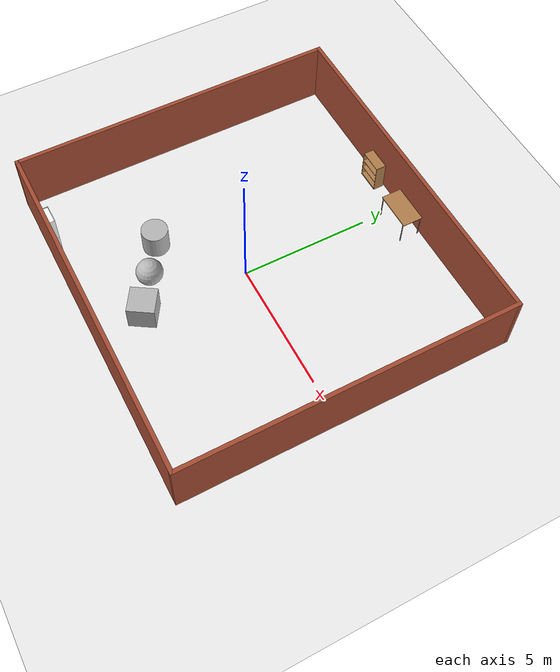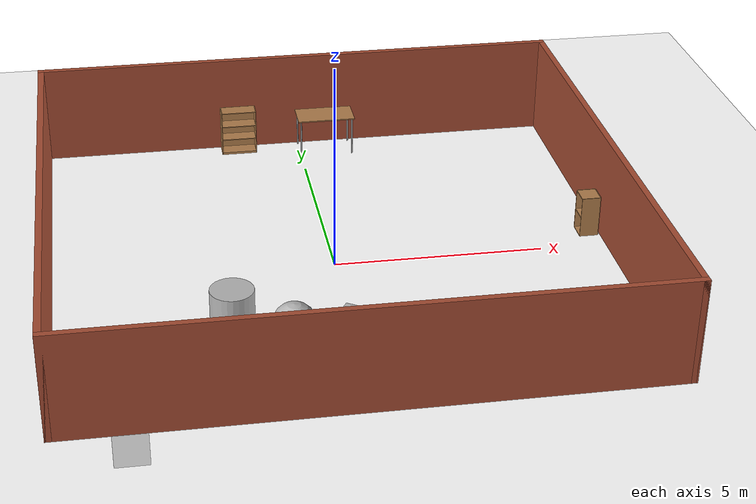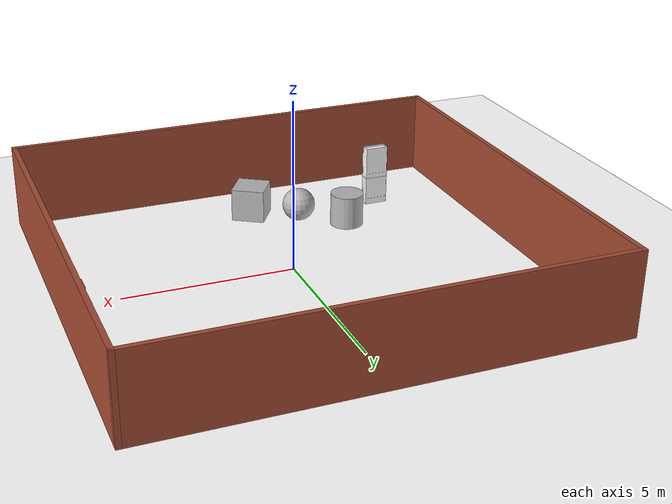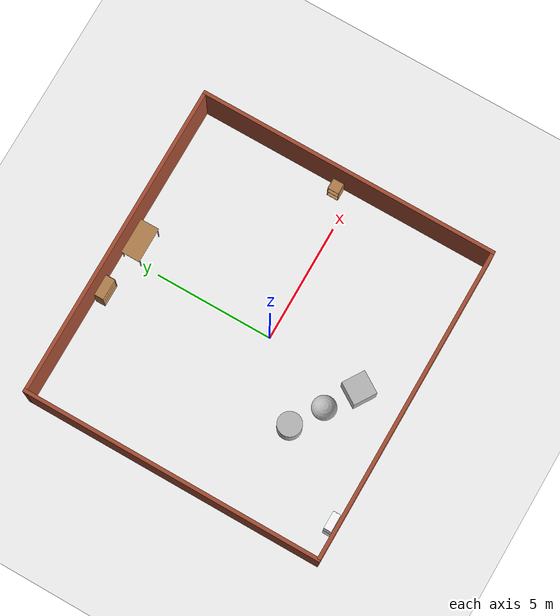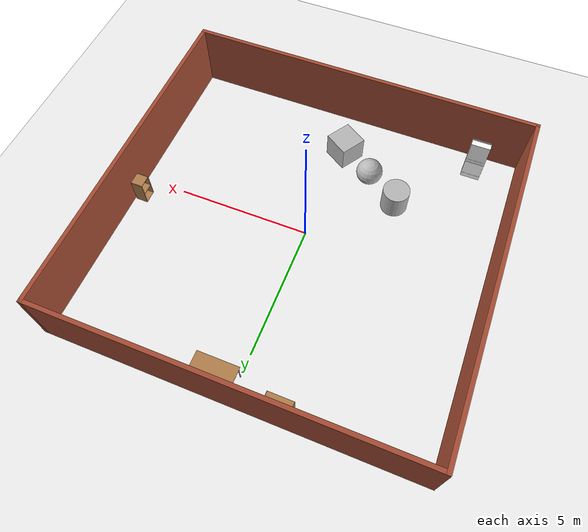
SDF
<sdf version="1.6">
 <world name="default">
  <light name="sun" type="directional">
   <pose>0 0 10 0 -0 0</pose>
   <diffuse>0.8 0.8 0.8 1</diffuse>
   <specular>0.2 0.2 0.2 1</specular>
   <attenuation>
    <range>1000</range>
    <constant>0.9</constant>
    <linear>0.01</linear>
    <quadratic>0.001</quadratic>
   </attenuation>
   <direction>-0.5 0.1 -0.9</direction>
   <spot><inner_angle>0</inner_angle><outer_angle>0</outer_angle><falloff>0</falloff></spot>
  </light>
  <model name="ground_plane">
   <static>1</static>
   <link name="link">
    <collision name="collision">
     <geometry><plane><normal>0 0 1</normal><size>100 100</size></plane></geometry>
     <surface><friction><ode><mu>100</mu><mu2>50</mu2></ode></friction></surface>
    </collision>
    <visual name="visual">
     <cast_shadows>0</cast_shadows>
     <geometry><plane><normal>0 0 1</normal><size>100 100</size></plane></geometry>
     <material>
      <script><uri>file://media/materials/scripts/gazebo.material</uri><name>Gazebo/Grey</name></script>
     </material>
    </visual>
   </link>
  </model>
  <gravity>0 0 -9.8</gravity>
  <magnetic_field>6e-06 2.3e-05 -4.2e-05</magnetic_field>
  <atmosphere type="adiabatic"/>
  <physics type="ode">
   <max_step_size>0.001</max_step_size>
   <real_time_factor>1</real_time_factor>
   <real_time_update_rate>1000</real_time_update_rate>
  </physics>
  <scene><ambient>0.4 0.4 0.4 1</ambient><background>0.7 0.7 0.7 1</background><shadows>1</shadows></scene>
  <spherical_coordinates>
   <surface_model>EARTH_WGS84</surface_model>
   <latitude_deg>0</latitude_deg>
   <longitude_deg>0</longitude_deg>
   <elevation>0</elevation>
   <heading_deg>0</heading_deg>
  </spherical_coordinates>
  <model name="Wall">
   <pose>0.003474 0.412323 0 0 -0 0</pose>
   <link name="Wall_0">
    <collision name="Wall_0_Collision">
     <geometry><box><size>12.75 0.15 2.5</size></box></geometry>
     <pose>0 0 1.25 0 -0 0</pose>
    </collision>
    <visual name="Wall_0_Visual">
     <pose>0 0 1.25 0 -0 0</pose>
     <geometry><box><size>12.75 0.15 2.5</size></box></geometry>
     <material>
      <script><uri>file://media/materials/scripts/gazebo.material</uri><name>Gazebo/Bricks</name></script>
      <ambient>1 1 1 1</ambient>
     </material>
     <meta><layer>0</layer></meta>
    </visual>
    <pose>-6.675 0 0 0 -0 -1.5708</pose>
   </link>
   <link name="Wall_1">
    <collision name="Wall_1_Collision">
     <geometry><box><size>13.5 0.15 2.5</size></box></geometry>
     <pose>0 0 1.25 0 -0 0</pose>
    </collision>
    <visual name="Wall_1_Visual">
     <pose>0 0 1.25 0 -0 0</pose>
     <geometry><box><size>13.5 0.15 2.5</size></box></geometry>
     <material>
      <script><uri>file://media/materials/scripts/gazebo.material</uri><name>Gazebo/Bricks</name></script>
      <ambient>1 1 1 1</ambient>
     </material>
     <meta><layer>0</layer></meta>
    </visual>
    <pose>0 -6.3 0 0 -0 0</pose>
   </link>
   <link name="Wall_2">
    <collision name="Wall_2_Collision">
     <geometry><box><size>12.75 0.15 2.5</size></box></geometry>
     <pose>0 0 1.25 0 -0 0</pose>
    </collision>
    <visual name="Wall_2_Visual">
     <pose>0 0 1.25 0 -0 0</pose>
     <geometry><box><size>12.75 0.15 2.5</size></box></geometry>
     <material>
      <script><uri>file://media/materials/scripts/gazebo.material</uri><name>Gazebo/Bricks</name></script>
      <ambient>1 1 1 1</ambient>
     </material>
     <meta><layer>0</layer></meta>
    </visual>
    <pose>6.675 0 0 0 -0 1.5708</pose>
   </link>
   <link name="Wall_3">
    <collision name="Wall_3_Collision">
     <geometry><box><size>13.5 0.15 2.5</size></box></geometry>
     <pose>0 0 1.25 0 -0 0</pose>
    </collision>
    <visual name="Wall_3_Visual">
     <pose>0 0 1.25 0 -0 0</pose>
     <geometry><box><size>13.5 0.15 2.5</size></box></geometry>
     <material>
      <script><uri>file://media/materials/scripts/gazebo.material</uri><name>Gazebo/Bricks</name></script>
      <ambient>1 1 1 1</ambient>
     </material>
     <meta><layer>0</layer></meta>
    </visual>
    <pose>0 6.3 0 0 -0 3.14159</pose>
   </link>
   <static>1</static>
  </model>
  <model name="table">
   <static>1</static>
   <link name="link">
    <collision name="surface">
     <pose>0 0 1 0 -0 0</pose>
     <geometry><box><size>1.5 0.8 0.03</size></box></geometry>
     <surface><friction><ode><mu>0.6</mu><mu2>0.6</mu2></ode></friction></surface>
    </collision>
    <visual name="visual1">
     <pose>0 0 1 0 -0 0</pose>
     <geometry><box><size>1.5 0.8 0.03</size></box></geometry>
     <material>
      <script><uri>file://media/materials/scripts/gazebo.material</uri><name>Gazebo/Wood</name></script>
     </material>
    </visual>
    <collision name="front_left_leg">
     <pose>0.68 0.38 0.5 0 -0 0</pose>
     <geometry><cylinder><radius>0.02</radius><length>1</length></cylinder></geometry>
    </collision>
    <visual name="front_left_leg">
     <pose>0.68 0.38 0.5 0 -0 0</pose>
     <geometry><cylinder><radius>0.02</radius><length>1</length></cylinder></geometry>
     <material>
      <script><uri>file://media/materials/scripts/gazebo.material</uri><name>Gazebo/Grey</name></script>
     </material>
    </visual>
    <collision name="front_right_leg">
     <pose>0.68 -0.38 0.5 0 -0 0</pose>
     <geometry><cylinder><radius>0.02</radius><length>1</length></cylinder></geometry>
    </collision>
    <visual name="front_right_leg">
     <pose>0.68 -0.38 0.5 0 -0 0</pose>
     <geometry><cylinder><radius>0.02</radius><length>1</length></cylinder></geometry>
     <material>
      <script><uri>file://media/materials/scripts/gazebo.material</uri><name>Gazebo/Grey</name></script>
     </material>
    </visual>
    <collision name="back_right_leg">
     <pose>-0.68 -0.38 0.5 0 -0 0</pose>
     <geometry><cylinder><radius>0.02</radius><length>1</length></cylinder></geometry>
    </collision>
    <visual name="back_right_leg">
     <pose>-0.68 -0.38 0.5 0 -0 0</pose>
     <geometry><cylinder><radius>0.02</radius><length>1</length></cylinder></geometry>
     <material>
      <script><uri>file://media/materials/scripts/gazebo.material</uri><name>Gazebo/Grey</name></script>
     </material>
    </visual>
    <collision name="back_left_leg">
     <pose>-0.68 0.38 0.5 0 -0 0</pose>
     <geometry><cylinder><radius>0.02</radius><length>1</length></cylinder></geometry>
    </collision>
    <visual name="back_left_leg">
     <pose>-0.68 0.38 0.5 0 -0 0</pose>
     <geometry><cylinder><radius>0.02</radius><length>1</length></cylinder></geometry>
     <material>
      <script><uri>file://media/materials/scripts/gazebo.material</uri><name>Gazebo/Grey</name></script>
     </material>
    </visual>
   </link>
   <pose>0.676724 6.15986 0 0 -0 0</pose>
  </model>
  <model name="bookshelf">
   <static>1</static>
   <link name="link">
    <inertial><mass>1</mass></inertial>
    <collision name="back">
     <pose>0 0.005 0.6 0 -0 0</pose>
     <geometry><box><size>0.9 0.01 1.2</size></box></geometry>
    </collision>
    <visual name="visual1">
     <pose>0 0.005 0.6 0 -0 0</pose>
     <geometry><box><size>0.9 0.01 1.2</size></box></geometry>
     <material>
      <script><uri>file://media/materials/scripts/gazebo.material</uri><name>Gazebo/Wood</name></script>
     </material>
    </visual>
    <collision name="left_side">
     <pose>0.45 -0.195 0.6 0 -0 0</pose>
     <geometry><box><size>0.02 0.4 1.2</size></box></geometry>
    </collision>
    <visual name="visual2">
     <pose>0.45 -0.195 0.6 0 -0 0</pose>
     <geometry><box><size>0.02 0.4 1.2</size></box></geometry>
     <material>
      <script><uri>file://media/materials/scripts/gazebo.material</uri><name>Gazebo/Wood</name></script>
     </material>
    </visual>
    <collision name="right_side">
     <pose>-0.45 -0.195 0.6 0 -0 0</pose>
     <geometry><box><size>0.02 0.4 1.2</size></box></geometry>
    </collision>
    <visual name="visual3">
     <pose>-0.45 -0.195 0.6 0 -0 0</pose>
     <geometry><box><size>0.02 0.4 1.2</size></box></geometry>
     <material>
      <script><uri>file://media/materials/scripts/gazebo.material</uri><name>Gazebo/Wood</name></script>
     </material>
    </visual>
    <collision name="bottom">
     <pose>0 -0.195 0.03 0 -0 0</pose>
     <geometry><box><size>0.88 0.4 0.06</size></box></geometry>
    </collision>
    <visual name="visual4">
     <pose>0 -0.195 0.03 0 -0 0</pose>
     <geometry><box><size>0.88 0.4 0.06</size></box></geometry>
     <material>
      <script><uri>file://media/materials/scripts/gazebo.material</uri><name>Gazebo/Wood</name></script>
     </material>
    </visual>
    <collision name="top">
     <pose>0 -0.195 1.19 0 -0 0</pose>
     <geometry><box><size>0.88 0.4 0.02</size></box></geometry>
    </collision>
    <visual name="visual5">
     <pose>0 -0.195 1.19 0 -0 0</pose>
     <geometry><box><size>0.88 0.4 0.02</size></box></geometry>
     <material>
      <script><uri>file://media/materials/scripts/gazebo.material</uri><name>Gazebo/Wood</name></script>
     </material>
    </visual>
    <collision name="low_shelf">
     <pose>0 -0.195 0.43 0 -0 0</pose>
     <geometry><box><size>0.88 0.4 0.02</size></box></geometry>
    </collision>
    <visual name="visual6">
     <pose>0 -0.195 0.43 0 -0 0</pose>
     <geometry><box><size>0.88 0.4 0.02</size></box></geometry>
     <material>
      <script><uri>file://media/materials/scripts/gazebo.material</uri><name>Gazebo/Wood</name></script>
     </material>
    </visual>
    <collision name="high_shelf">
     <pose>0 -0.195 0.8 0 -0 0</pose>
     <geometry><box><size>0.88 0.4 0.02</size></box></geometry>
    </collision>
    <visual name="visual7">
     <pose>0 -0.195 0.8 0 -0 0</pose>
     <geometry><box><size>0.88 0.4 0.02</size></box></geometry>
     <material>
      <script><uri>file://media/materials/scripts/gazebo.material</uri><name>Gazebo/Wood</name></script>
     </material>
    </visual>
   </link>
   <pose>-1.61779 6.56656 0 0 -0 0</pose>
  </model>
  <model name="cabinet">
   <static>1</static>
   <link name="cabinet_bottom_plate">
    <inertial>
     <pose>0 0 -1 0 -0 0</pose>
     <inertia><ixx>2.05</ixx><ixy>0</ixy><ixz>0</ixz><iyy>2.05</iyy><iyz>0</iyz><izz>2.05</izz></inertia>
     <mass>25</mass>
    </inertial>
    <collision name="cabinet_bottom_plate_geom">
     <pose>0 0 0.01 0 -0 0</pose>
     <geometry><box><size>0.45 0.45 0.02</size></box></geometry>
    </collision>
    <visual name="cabinet_bottom_plate_geom_visual">
     <pose>0 0 0.01 0 -0 0</pose>
     <geometry><box><size>0.45 0.45 0.02</size></box></geometry>
     <material>
      <script><uri>file://media/materials/scripts/gazebo.material</uri><name>Gazebo/Wood</name></script>
     </material>
    </visual>
    <collision name="cabinet_bottom_plate_geom_cabinet_back_plate">
     <pose>0.235 0 0.51 0 -0 0</pose>
     <geometry><box><size>0.02 0.45 1.02</size></box></geometry>
    </collision>
    <visual name="cabinet_bottom_plate_geom_cabinet_back_plate_visual">
     <pose>0.235 0 0.51 0 -0 0</pose>
     <geometry><box><size>0.02 0.45 1.02</size></box></geometry>
     <material>
      <script><uri>file://media/materials/scripts/gazebo.material</uri><name>Gazebo/Wood</name></script>
     </material>
    </visual>
    <collision name="cabinet_bottom_plate_geom_cabinet_left_plate">
     <pose>0 0.235 0.51 0 -0 0</pose>
     <geometry><box><size>0.45 0.02 1.02</size></box></geometry>
    </collision>
    <visual name="cabinet_bottom_plate_geom_cabinet_left_plate_visual">
     <pose>0 0.235 0.51 0 -0 0</pose>
     <geometry><box><size>0.45 0.02 1.02</size></box></geometry>
     <material>
      <script><uri>file://media/materials/scripts/gazebo.material</uri><name>Gazebo/Wood</name></script>
     </material>
    </visual>
    <collision name="cabinet_bottom_plate_geom_cabinet_middle_plate">
     <pose>0 0 0.51 0 -0 0</pose>
     <geometry><box><size>0.45 0.45 0.02</size></box></geometry>
    </collision>
    <visual name="cabinet_bottom_plate_geom_cabinet_middle_plate_visual">
     <pose>0 0 0.51 0 -0 0</pose>
     <geometry><box><size>0.45 0.45 0.02</size></box></geometry>
     <material>
      <script><uri>file://media/materials/scripts/gazebo.material</uri><name>Gazebo/Wood</name></script>
     </material>
    </visual>
    <collision name="cabinet_bottom_plate_geom_cabinet_right_plate">
     <pose>0 -0.235 0.51 0 -0 0</pose>
     <geometry><box><size>0.45 0.02 1.02</size></box></geometry>
    </collision>
    <visual name="cabinet_bottom_plate_geom_cabinet_right_plate_visual">
     <pose>0 -0.235 0.51 0 -0 0</pose>
     <geometry><box><size>0.45 0.02 1.02</size></box></geometry>
     <material>
      <script><uri>file://media/materials/scripts/gazebo.material</uri><name>Gazebo/Wood</name></script>
     </material>
    </visual>
    <collision name="cabinet_bottom_plate_geom_cabinet_top_plate">
     <pose>0 0 1.01 0 -0 0</pose>
     <geometry><box><size>0.45 0.45 0.02</size></box></geometry>
    </collision>
    <visual name="cabinet_bottom_plate_geom_cabinet_top_plate_visual">
     <pose>0 0 1.01 0 -0 0</pose>
     <geometry><box><size>0.45 0.45 0.02</size></box></geometry>
     <material>
      <script><uri>file://media/materials/scripts/gazebo.material</uri><name>Gazebo/Wood</name></script>
     </material>
    </visual>
   </link>
   <pose>6.3169 0.676023 0 0 -0 0</pose>
  </model>
  <model name="Cabinet_2">
   <static>1</static>
   <link name="link">
    <pose>0 0 0.04 0 -0 0</pose>
    <collision name="collision">
     <geometry><mesh><uri>model://Cabinet_2/meshes/Cabinet_2.dae</uri></mesh></geometry>
    </collision>
    <visual name="visual">
     <geometry><mesh><uri>model://Cabinet_2/meshes/Cabinet_2.dae</uri></mesh></geometry>
    </visual>
   </link>
   <pose>-5.05694 -5.60887 0 0 -0 0</pose>
  </model>
  <model name="textured_shapes">
   <pose>-1.3777 -3.18622 0.5 0 -0 1.00588</pose>
   <link name="box">
    <pose>0 -1.5 0 0 -0 0</pose>
    <collision name="collision"><geometry><box><size>1 1 1</size></box></geometry></collision>
    <visual name="visual">
     <geometry><box><size>1 1 1</size></box></geometry>
     <material>
      <script>
       <uri>model://textured_shapes/materials/scripts</uri>
       <uri>model://textured_shapes/materials/textures</uri>
       <name>TexturedShape/Squares</name>
      </script>
     </material>
    </visual>
    <inertial>
     <inertia><ixx>1</ixx><ixy>0</ixy><ixz>0</ixz><iyy>1</iyy><iyz>0</iyz><izz>1</izz></inertia>
     <mass>1</mass>
    </inertial>
   </link>
   <link name="sphere">
    <collision name="collision"><geometry><sphere><radius>0.5</radius></sphere></geometry></collision>
    <visual name="visual">
     <geometry><sphere><radius>0.5</radius></sphere></geometry>
     <material>
      <script>
       <uri>model://textured_shapes/materials/scripts</uri>
       <uri>model://textured_shapes/materials/textures</uri>
       <name>TexturedShape/Squares</name>
      </script>
     </material>
    </visual>
    <inertial>
     <inertia><ixx>1</ixx><ixy>0</ixy><ixz>0</ixz><iyy>1</iyy><iyz>0</iyz><izz>1</izz></inertia>
     <mass>1</mass>
    </inertial>
   </link>
   <link name="cylinder">
    <pose>0 1.5 0 0 -0 0</pose>
    <collision name="collision">
     <geometry><cylinder><radius>0.5</radius><length>1</length></cylinder></geometry>
    </collision>
    <visual name="visual">
     <geometry><cylinder><radius>0.5</radius><length>1</length></cylinder></geometry>
     <material>
      <script>
       <uri>model://textured_shapes/materials/scripts</uri>
       <uri>model://textured_shapes/materials/textures</uri>
       <name>TexturedShape/Squares</name>
      </script>
     </material>
    </visual>
    <inertial>
     <inertia><ixx>1</ixx><ixy>0</ixy><ixz>0</ixz><iyy>1</iyy><iyz>0</iyz><izz>1</izz></inertia>
     <mass>1</mass>
    </inertial>
   </link>
  </model>
 </world>
</sdf>
